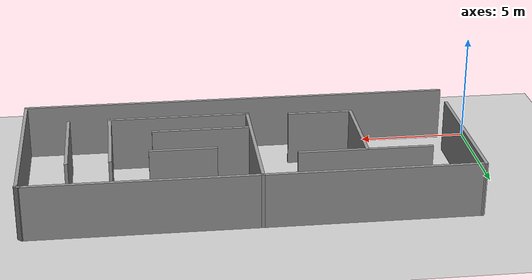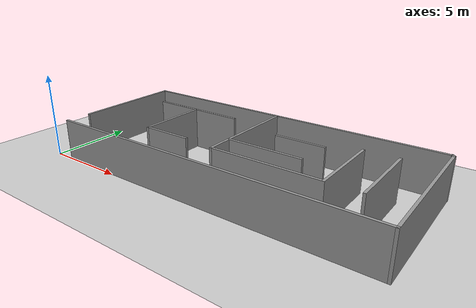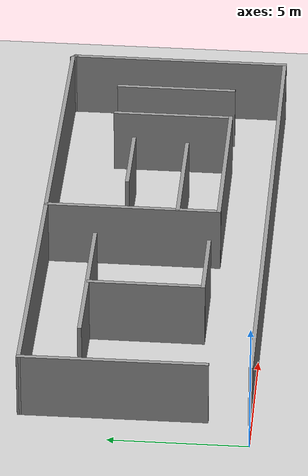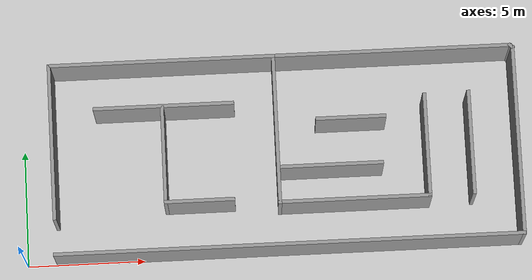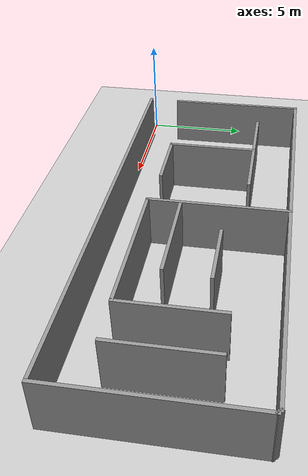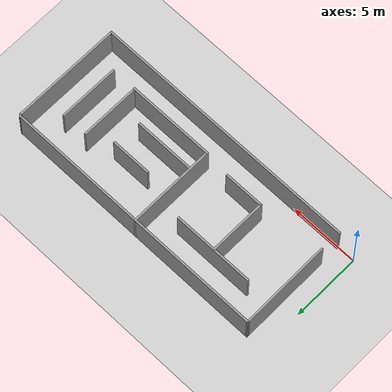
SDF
<sdf version="1.7">
 <world name="default">
  <light name="sun" type="directional">
   <pose>0 0 10 0 -0 0</pose>
   <diffuse>0.8 0.8 0.8 1</diffuse>
   <specular>0.2 0.2 0.2 1</specular>
   <attenuation>
    <range>1000</range>
    <constant>0.9</constant>
    <linear>0.01</linear>
    <quadratic>0.001</quadratic>
   </attenuation>
   <direction>-0.5 0.1 -0.9</direction>
   <spot><inner_angle>0</inner_angle><outer_angle>0</outer_angle><falloff>0</falloff></spot>
  </light>
  <model name="ground_plane">
   <static>1</static>
   <link name="link">
    <collision name="collision">
     <geometry><plane><normal>0 0 1</normal><size>100 100</size></plane></geometry>
     <surface>
      <contact><collide_bitmask>65535</collide_bitmask></contact>
      <friction><ode><mu>100</mu><mu2>50</mu2></ode></friction>
     </surface>
    </collision>
    <visual name="visual">
     <cast_shadows>0</cast_shadows>
     <geometry><plane><normal>0 0 1</normal><size>100 100</size></plane></geometry>
     <material>
      <script><uri>file://media/materials/scripts/gazebo.material</uri><name>Gazebo/Grey</name></script>
     </material>
    </visual>
   </link>
  </model>
  <gravity>0 0 -9.8</gravity>
  <magnetic_field>6e-06 2.3e-05 -4.2e-05</magnetic_field>
  <atmosphere type="adiabatic"/>
  <physics type="ode">
   <max_step_size>0.001</max_step_size>
   <real_time_factor>1</real_time_factor>
   <real_time_update_rate>1000</real_time_update_rate>
  </physics>
  <scene><ambient>0.4 0.4 0.4 1</ambient><background>0.7 0.7 0.7 1</background><shadows>1</shadows></scene>
  <spherical_coordinates>
   <surface_model>EARTH_WGS84</surface_model>
   <latitude_deg>0</latitude_deg>
   <longitude_deg>0</longitude_deg>
   <elevation>0</elevation>
   <heading_deg>0</heading_deg>
  </spherical_coordinates>
  <model name="bighouse1">
   <pose>11.2175 4.1433 0 0 -0 0</pose>
   <link name="Wall_0">
    <collision name="Wall_0_Collision">
     <geometry><box><size>19.9075 0.15 2.5</size></box></geometry>
     <pose>0 0 1.25 0 -0 0</pose>
    </collision>
    <visual name="Wall_0_Visual">
     <pose>0 0 1.25 0 -0 0</pose>
     <geometry><box><size>19.9075 0.15 2.5</size></box></geometry>
     <material>
      <script><uri>file://media/materials/scripts/gazebo.material</uri><name>Gazebo/Grey</name></script>
      <ambient>1 1 1 1</ambient>
     </material>
     <meta><layer>0</layer></meta>
    </visual>
    <pose>-0.015262 -4.09239 0 0 -0 0</pose>
   </link>
   <link name="Wall_10">
    <collision name="Wall_10_Collision">
     <geometry><box><size>6.50013 0.15 2.5</size></box></geometry>
     <pose>0 0 1.25 0 -0 0</pose>
    </collision>
    <visual name="Wall_10_Visual">
     <pose>0 0 1.25 0 -0 0</pose>
     <geometry><box><size>6.50013 0.15 2.5</size></box></geometry>
     <material>
      <script><uri>file://media/materials/scripts/gazebo.material</uri><name>Gazebo/Grey</name></script>
      <ambient>1 1 1 1</ambient>
     </material>
     <meta><layer>0</layer></meta>
    </visual>
    <pose>-0.340262 0.886354 0 0 -0 -1.5708</pose>
   </link>
   <link name="Wall_11">
    <collision name="Wall_11_Collision">
     <geometry><box><size>6.5 0.15 2.5</size></box></geometry>
     <pose>0 0 1.25 0 -0 0</pose>
    </collision>
    <visual name="Wall_11_Visual">
     <pose>0 0 1.25 0 -0 0</pose>
     <geometry><box><size>6.5 0.15 2.5</size></box></geometry>
     <material>
      <script><uri>file://media/materials/scripts/gazebo.material</uri><name>Gazebo/Grey</name></script>
      <ambient>1 1 1 1</ambient>
     </material>
     <meta><layer>0</layer></meta>
    </visual>
    <pose>2.83474 -2.28865 0 0 -0 0</pose>
   </link>
   <link name="Wall_12">
    <collision name="Wall_12_Collision">
     <geometry><box><size>4.5 0.15 2.5</size></box></geometry>
     <pose>0 0 1.25 0 -0 0</pose>
    </collision>
    <visual name="Wall_12_Visual">
     <pose>0 0 1.25 0 -0 0</pose>
     <geometry><box><size>4.5 0.15 2.5</size></box></geometry>
     <material>
      <script><uri>file://media/materials/scripts/gazebo.material</uri><name>Gazebo/Grey</name></script>
      <ambient>1 1 1 1</ambient>
     </material>
     <meta><layer>0</layer></meta>
    </visual>
    <pose>6.00974 -0.113646 0 0 -0 1.5708</pose>
   </link>
   <link name="Wall_14">
    <collision name="Wall_14_Collision">
     <geometry><box><size>3 0.15 2.5</size></box></geometry>
     <pose>0 0 1.25 0 -0 0</pose>
    </collision>
    <visual name="Wall_14_Visual">
     <pose>0 0 1.25 0 -0 0</pose>
     <geometry><box><size>3 0.15 2.5</size></box></geometry>
     <material>
      <script><uri>file://media/materials/scripts/gazebo.material</uri><name>Gazebo/Grey</name></script>
      <ambient>1 1 1 1</ambient>
     </material>
     <meta><layer>0</layer></meta>
    </visual>
    <pose>2.8387 1.22841 0 0 -0 0</pose>
   </link>
   <link name="Wall_18">
    <collision name="Wall_18_Collision">
     <geometry><box><size>8.20377 0.15 2.5</size></box></geometry>
     <pose>0 0 1.25 0 -0 0</pose>
    </collision>
    <visual name="Wall_18_Visual">
     <pose>0 0 1.25 0 -0 0</pose>
     <geometry><box><size>8.20377 0.15 2.5</size></box></geometry>
     <material>
      <script><uri>file://media/materials/scripts/gazebo.material</uri><name>Gazebo/Grey</name></script>
      <ambient>1 1 1 1</ambient>
     </material>
     <meta><layer>0</layer></meta>
    </visual>
    <pose>9.88661 -0.065516 0 0 -0 1.5708</pose>
   </link>
   <link name="Wall_19">
    <collision name="Wall_19_Collision">
     <geometry><box><size>0.294089 0.15 2.5</size></box></geometry>
     <pose>0 0 1.25 0 -0 0</pose>
    </collision>
    <visual name="Wall_19_Visual">
     <pose>0 0 1.25 0 -0 0</pose>
     <geometry><box><size>0.294089 0.15 2.5</size></box></geometry>
     <material>
      <script><uri>file://media/materials/scripts/gazebo.material</uri><name>Gazebo/Grey</name></script>
      <ambient>1 1 1 1</ambient>
     </material>
     <meta><layer>0</layer></meta>
    </visual>
    <pose>9.83474 4.01135 0 0 -0 2.37454</pose>
   </link>
   <link name="Wall_20">
    <collision name="Wall_20_Collision">
     <geometry><box><size>10.2731 0.15 2.5</size></box></geometry>
     <pose>0 0 1.25 0 -0 0</pose>
    </collision>
    <visual name="Wall_20_Visual">
     <pose>0 0 1.25 0 -0 0</pose>
     <geometry><box><size>10.2731 0.15 2.5</size></box></geometry>
     <material>
      <script><uri>file://media/materials/scripts/gazebo.material</uri><name>Gazebo/Grey</name></script>
      <ambient>1 1 1 1</ambient>
     </material>
     <meta><layer>0</layer></meta>
    </visual>
    <pose>4.7213 4.06135 0 0 -0 3.14159</pose>
   </link>
   <link name="Wall_22">
    <collision name="Wall_22_Collision">
     <geometry><box><size>4.5 0.15 2.5</size></box></geometry>
     <pose>0 0 1.25 0 -0 0</pose>
    </collision>
    <visual name="Wall_22_Visual">
     <pose>0 0 1.25 0 -0 0</pose>
     <geometry><box><size>4.5 0.15 2.5</size></box></geometry>
     <material>
      <script><uri>file://media/materials/scripts/gazebo.material</uri><name>Gazebo/Grey</name></script>
      <ambient>1 1 1 1</ambient>
     </material>
     <meta><layer>0</layer></meta>
    </visual>
    <pose>7.89027 -0.081703 0 0 -0 -1.5708</pose>
   </link>
   <link name="Wall_24">
    <collision name="Wall_24_Collision">
     <geometry><box><size>6 0.15 2.5</size></box></geometry>
     <pose>0 0 1.25 0 -0 0</pose>
    </collision>
    <visual name="Wall_24_Visual">
     <pose>0 0 1.25 0 -0 0</pose>
     <geometry><box><size>6 0.15 2.5</size></box></geometry>
     <material>
      <script><uri>file://media/materials/scripts/gazebo.material</uri><name>Gazebo/Grey</name></script>
      <ambient>1 1 1 1</ambient>
     </material>
     <meta><layer>0</layer></meta>
    </visual>
    <pose>-5.09456 2.0933 0 0 -0 0</pose>
   </link>
   <link name="Wall_26">
    <collision name="Wall_26_Collision">
     <geometry><box><size>4.25 0.15 2.5</size></box></geometry>
     <pose>0 0 1.25 0 -0 0</pose>
    </collision>
    <visual name="Wall_26_Visual">
     <pose>0 0 1.25 0 -0 0</pose>
     <geometry><box><size>4.25 0.15 2.5</size></box></geometry>
     <material>
      <script><uri>file://media/materials/scripts/gazebo.material</uri><name>Gazebo/Grey</name></script>
      <ambient>1 1 1 1</ambient>
     </material>
     <meta><layer>0</layer></meta>
    </visual>
    <pose>-5.16343 -0.017044 0 0 -0 -1.5708</pose>
   </link>
   <link name="Wall_27">
    <collision name="Wall_27_Collision">
     <geometry><box><size>3 0.15 2.5</size></box></geometry>
     <pose>0 0 1.25 0 -0 0</pose>
    </collision>
    <visual name="Wall_27_Visual">
     <pose>0 0 1.25 0 -0 0</pose>
     <geometry><box><size>3 0.15 2.5</size></box></geometry>
     <material>
      <script><uri>file://media/materials/scripts/gazebo.material</uri><name>Gazebo/Grey</name></script>
      <ambient>1 1 1 1</ambient>
     </material>
     <meta><layer>0</layer></meta>
    </visual>
    <pose>-3.73843 -2.06704 0 0 -0 0</pose>
   </link>
   <link name="Wall_32">
    <collision name="Wall_32_Collision">
     <geometry><box><size>4.5 0.15 2.5</size></box></geometry>
     <pose>0 0 1.25 0 -0 0</pose>
    </collision>
    <visual name="Wall_32_Visual">
     <pose>0 0 1.25 0 -0 0</pose>
     <geometry><box><size>4.5 0.15 2.5</size></box></geometry>
     <material>
      <script><uri>file://media/materials/scripts/gazebo.material</uri><name>Gazebo/Grey</name></script>
      <ambient>1 1 1 1</ambient>
     </material>
     <meta><layer>0</layer></meta>
    </visual>
    <pose>1.87695 -0.783043 0 0 -0 0</pose>
   </link>
   <link name="Wall_7">
    <collision name="Wall_7_Collision">
     <geometry><box><size>6.75016 0.15 2.5</size></box></geometry>
     <pose>0 0 1.25 0 -0 0</pose>
    </collision>
    <visual name="Wall_7_Visual">
     <pose>0 0 1.25 0 -0 0</pose>
     <geometry><box><size>6.75016 0.15 2.5</size></box></geometry>
     <material>
      <script><uri>file://media/materials/scripts/gazebo.material</uri><name>Gazebo/Grey</name></script>
      <ambient>1 1 1 1</ambient>
     </material>
     <meta><layer>0</layer></meta>
    </visual>
    <pose>-9.894 0.761354 0 0 -0 1.5778</pose>
   </link>
   <link name="Wall_8">
    <collision name="Wall_8_Collision">
     <geometry><box><size>9.72687 0.15 2.5</size></box></geometry>
     <pose>0 0 1.25 0 -0 0</pose>
    </collision>
    <visual name="Wall_8_Visual">
     <pose>0 0 1.25 0 -0 0</pose>
     <geometry><box><size>9.72687 0.15 2.5</size></box></geometry>
     <material>
      <script><uri>file://media/materials/scripts/gazebo.material</uri><name>Gazebo/Grey</name></script>
      <ambient>1 1 1 1</ambient>
     </material>
     <meta><layer>0</layer></meta>
    </visual>
    <pose>-5.1287 4.06135 0 0 -0 0</pose>
   </link>
   <static>1</static>
  </model>
 </world>
</sdf>
